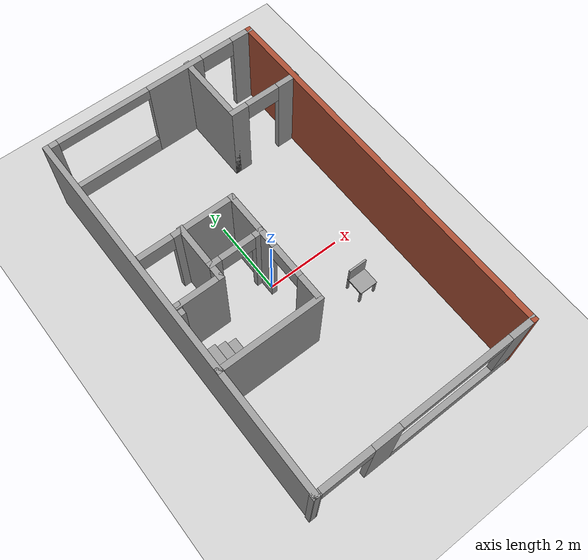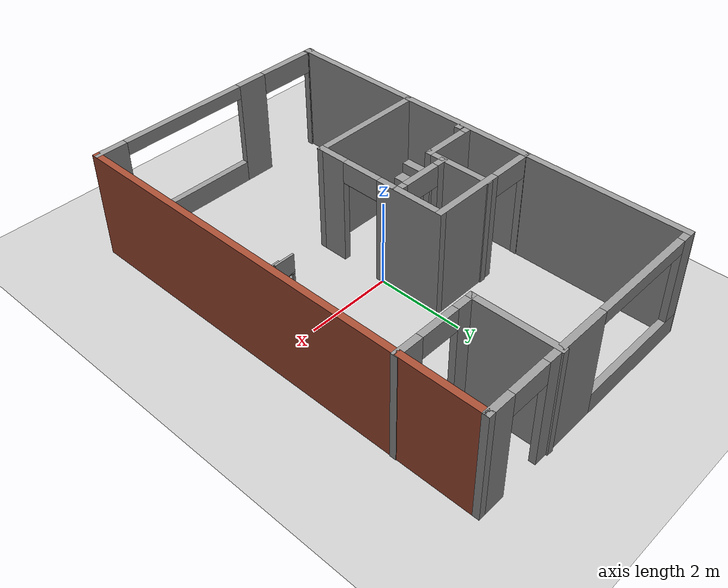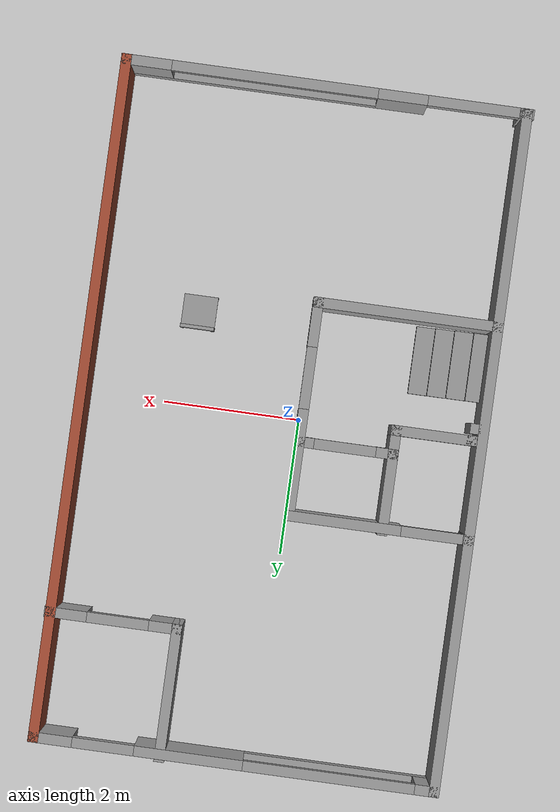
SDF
<sdf version="1.6">
 <world name="default">
  <model name="ground_plane">
   <static>1</static>
   <link name="link">
    <collision name="collision">
     <geometry><plane><normal>0 0 1</normal><size>100 100</size></plane></geometry>
     <surface><friction><ode><mu>100</mu><mu2>50</mu2></ode></friction></surface>
    </collision>
    <visual name="visual">
     <cast_shadows>0</cast_shadows>
     <geometry><plane><normal>0 0 1</normal><size>100 100</size></plane></geometry>
     <material>
      <script><uri>file://media/materials/scripts/gazebo.material</uri><name>Gazebo/Grey</name></script>
     </material>
    </visual>
   </link>
  </model>
  <model name="Livingroomlab">
   <pose>0.248675 0.131128 0 0 -0 0</pose>
   <link name="Stairs_1">
    <visual name="Stairs_1_Visual_0">
     <pose>-1.93298 -1.24451 0.125 0 0 -1.5708</pose>
     <geometry><box><size>1 0.2765 0.25</size></box></geometry>
     <material>
      <script><uri>file://media/materials/scripts/gazebo.material</uri><name>Gazebo/Grey</name></script>
      <ambient>1 1 1 1</ambient>
     </material>
     <meta><layer>0</layer></meta>
    </visual>
    <collision name="Stairs_1_Collision_0">
     <geometry><box><size>1 0.2765 0.25</size></box></geometry>
     <pose>-1.93298 -1.24451 0.125 0 0 -1.5708</pose>
    </collision>
    <visual name="Stairs_1_Visual_1">
     <pose>-2.20948 -1.24451 0.375 0 0 -1.5708</pose>
     <geometry><box><size>1 0.2765 0.25</size></box></geometry>
     <material>
      <script><uri>file://media/materials/scripts/gazebo.material</uri><name>Gazebo/Grey</name></script>
      <ambient>1 1 1 1</ambient>
     </material>
     <meta><layer>0</layer></meta>
    </visual>
    <collision name="Stairs_1_Collision_1">
     <geometry><box><size>1 0.2765 0.25</size></box></geometry>
     <pose>-2.20948 -1.24451 0.375 0 0 -1.5708</pose>
    </collision>
    <visual name="Stairs_1_Visual_2">
     <pose>-2.48598 -1.24451 0.625 0 0 -1.5708</pose>
     <geometry><box><size>1 0.2765 0.25</size></box></geometry>
     <material>
      <script><uri>file://media/materials/scripts/gazebo.material</uri><name>Gazebo/Grey</name></script>
      <ambient>1 1 1 1</ambient>
     </material>
     <meta><layer>0</layer></meta>
    </visual>
    <collision name="Stairs_1_Collision_2">
     <geometry><box><size>1 0.2765 0.25</size></box></geometry>
     <pose>-2.48598 -1.24451 0.625 0 0 -1.5708</pose>
    </collision>
    <visual name="Stairs_1_Visual_3">
     <pose>-2.76248 -1.24451 0.875 0 0 -1.5708</pose>
     <geometry><box><size>1 0.2765 0.25</size></box></geometry>
     <material>
      <script><uri>file://media/materials/scripts/gazebo.material</uri><name>Gazebo/Grey</name></script>
      <ambient>1 1 1 1</ambient>
     </material>
     <meta><layer>0</layer></meta>
    </visual>
    <collision name="Stairs_1_Collision_3">
     <geometry><box><size>1 0.2765 0.25</size></box></geometry>
     <pose>-2.76248 -1.24451 0.875 0 0 -1.5708</pose>
    </collision>
   </link>
   <link name="Wall_10">
    <collision name="Wall_10_Collision">
     <geometry><box><size>0.15 0.15 2.5</size></box></geometry>
     <pose>0 0 1.25 0 -0 0</pose>
    </collision>
    <visual name="Wall_10_Visual">
     <pose>0 0 1.25 0 -0 0</pose>
     <geometry><box><size>0.15 0.15 2.5</size></box></geometry>
     <material>
      <script><uri>file://media/materials/scripts/gazebo.material</uri><name>Gazebo/Grey</name></script>
      <ambient>1 1 1 1</ambient>
     </material>
     <meta><layer>0</layer></meta>
    </visual>
    <pose>2.91851 4.90773 0 0 -0 0</pose>
   </link>
   <link name="Wall_15">
    <pose>0.016769 4.90773 0 0 -0 3.14159</pose>
    <visual name="Wall_15_Visual_0">
     <pose>-2.65996 0 1.25 0 -0 0</pose>
     <geometry><box><size>0.633556 0.15 2.5</size></box></geometry>
     <material>
      <script><uri>file://media/materials/scripts/gazebo.material</uri><name>Gazebo/Grey</name></script>
      <ambient>1 1 1 1</ambient>
     </material>
     <meta><layer>0</layer></meta>
    </visual>
    <collision name="Wall_15_Collision_0">
     <geometry><box><size>0.633556 0.15 2.5</size></box></geometry>
     <pose>-2.65996 0 1.25 0 -0 0</pose>
    </collision>
    <visual name="Wall_15_Visual_1">
     <pose>-0.65252 0 1.25 0 -0 0</pose>
     <geometry><box><size>1.58132 0.15 2.5</size></box></geometry>
     <material>
      <script><uri>file://media/materials/scripts/gazebo.material</uri><name>Gazebo/Grey</name></script>
      <ambient>1 1 1 1</ambient>
     </material>
     <meta><layer>0</layer></meta>
    </visual>
    <collision name="Wall_15_Collision_1">
     <geometry><box><size>1.58132 0.15 2.5</size></box></geometry>
     <pose>-0.65252 0 1.25 0 -0 0</pose>
    </collision>
    <visual name="Wall_15_Visual_2">
     <pose>1.55744 0 0.25 0 -0 0</pose>
     <geometry><box><size>2.8386 0.15 0.5</size></box></geometry>
     <material>
      <script><uri>file://media/materials/scripts/gazebo.material</uri><name>Gazebo/Grey</name></script>
      <ambient>1 1 1 1</ambient>
     </material>
     <meta><layer>0</layer></meta>
    </visual>
    <collision name="Wall_15_Collision_2">
     <geometry><box><size>2.8386 0.15 0.5</size></box></geometry>
     <pose>1.55744 0 0.25 0 -0 0</pose>
    </collision>
    <visual name="Wall_15_Visual_3">
     <pose>2.80744 0 1.5 0 -0 0</pose>
     <geometry><box><size>0.338597 0.15 2</size></box></geometry>
     <material>
      <script><uri>file://media/materials/scripts/gazebo.material</uri><name>Gazebo/Grey</name></script>
      <ambient>1 1 1 1</ambient>
     </material>
     <meta><layer>0</layer></meta>
    </visual>
    <collision name="Wall_15_Collision_3">
     <geometry><box><size>0.338597 0.15 2</size></box></geometry>
     <pose>2.80744 0 1.5 0 -0 0</pose>
    </collision>
    <visual name="Wall_15_Visual_4">
     <pose>-1.89318 0 2.25 0 -0 0</pose>
     <geometry><box><size>0.9 0.15 0.5</size></box></geometry>
     <material>
      <script><uri>file://media/materials/scripts/gazebo.material</uri><name>Gazebo/Grey</name></script>
      <ambient>1 1 1 1</ambient>
     </material>
     <meta><layer>0</layer></meta>
    </visual>
    <collision name="Wall_15_Collision_4">
     <geometry><box><size>0.9 0.15 0.5</size></box></geometry>
     <pose>-1.89318 0 2.25 0 -0 0</pose>
    </collision>
    <visual name="Wall_15_Visual_5">
     <pose>1.38814 0 2.35 0 -0 0</pose>
     <geometry><box><size>2.5 0.15 0.3</size></box></geometry>
     <material>
      <script><uri>file://media/materials/scripts/gazebo.material</uri><name>Gazebo/Grey</name></script>
      <ambient>1 1 1 1</ambient>
     </material>
     <meta><layer>0</layer></meta>
    </visual>
    <collision name="Wall_15_Collision_5">
     <geometry><box><size>2.5 0.15 0.3</size></box></geometry>
     <pose>1.38814 0 2.35 0 -0 0</pose>
    </collision>
   </link>
   <link name="Wall_16">
    <collision name="Wall_16_Collision">
     <geometry><box><size>10 0.15 2.5</size></box></geometry>
     <pose>0 0 1.25 0 -0 0</pose>
    </collision>
    <visual name="Wall_16_Visual">
     <pose>0 0 1.25 0 -0 0</pose>
     <geometry><box><size>10 0.15 2.5</size></box></geometry>
     <material>
      <script><uri>file://media/materials/scripts/gazebo.material</uri><name>Gazebo/Grey</name></script>
      <ambient>1 1 1 1</ambient>
     </material>
     <meta><layer>0</layer></meta>
    </visual>
    <pose>-2.90823 -0.017274 0 0 0 -1.5708</pose>
   </link>
   <link name="Wall_17">
    <collision name="Wall_17_Collision">
     <geometry><box><size>0.15 0.15 2.5</size></box></geometry>
     <pose>0 0 1.25 0 -0 0</pose>
    </collision>
    <visual name="Wall_17_Visual">
     <pose>0 0 1.25 0 -0 0</pose>
     <geometry><box><size>0.15 0.15 2.5</size></box></geometry>
     <material>
      <script><uri>file://media/materials/scripts/gazebo.material</uri><name>Gazebo/Grey</name></script>
      <ambient>1 1 1 1</ambient>
     </material>
     <meta><layer>0</layer></meta>
    </visual>
    <pose>-2.88497 -4.94227 0 0 -0 0</pose>
   </link>
   <link name="Wall_19">
    <collision name="Wall_19_Collision">
     <geometry><box><size>2 0.15 2.5</size></box></geometry>
     <pose>0 0 1.25 0 -0 0</pose>
    </collision>
    <visual name="Wall_19_Visual">
     <pose>0 0 1.25 0 -0 0</pose>
     <geometry><box><size>2 0.15 2.5</size></box></geometry>
     <material>
      <script><uri>file://media/materials/scripts/gazebo.material</uri><name>Gazebo/Grey</name></script>
      <ambient>1 1 1 1</ambient>
     </material>
     <meta><layer>0</layer></meta>
    </visual>
    <pose>1.08149 4.01727 0 0 0 -1.5708</pose>
   </link>
   <link name="Wall_20">
    <pose>2.00649 3.09227 0 0 -0 0</pose>
    <visual name="Wall_20_Visual_0">
     <pose>-0.756805 0 1.25 0 -0 0</pose>
     <geometry><box><size>0.48639 0.15 2.5</size></box></geometry>
     <material>
      <script><uri>file://media/materials/scripts/gazebo.material</uri><name>Gazebo/Grey</name></script>
      <ambient>1 1 1 1</ambient>
     </material>
     <meta><layer>0</layer></meta>
    </visual>
    <collision name="Wall_20_Collision_0">
     <geometry><box><size>0.48639 0.15 2.5</size></box></geometry>
     <pose>-0.756805 0 1.25 0 -0 0</pose>
    </collision>
    <visual name="Wall_20_Visual_1">
     <pose>0.693195 0 1.25 0 -0 0</pose>
     <geometry><box><size>0.61361 0.15 2.5</size></box></geometry>
     <material>
      <script><uri>file://media/materials/scripts/gazebo.material</uri><name>Gazebo/Grey</name></script>
      <ambient>1 1 1 1</ambient>
     </material>
     <meta><layer>0</layer></meta>
    </visual>
    <collision name="Wall_20_Collision_1">
     <geometry><box><size>0.61361 0.15 2.5</size></box></geometry>
     <pose>0.693195 0 1.25 0 -0 0</pose>
    </collision>
    <visual name="Wall_20_Visual_2">
     <pose>-0.06361 0 2.25 0 -0 0</pose>
     <geometry><box><size>0.9 0.15 0.5</size></box></geometry>
     <material>
      <script><uri>file://media/materials/scripts/gazebo.material</uri><name>Gazebo/Grey</name></script>
      <ambient>1 1 1 1</ambient>
     </material>
     <meta><layer>0</layer></meta>
    </visual>
    <collision name="Wall_20_Collision_2">
     <geometry><box><size>0.9 0.15 0.5</size></box></geometry>
     <pose>-0.06361 0 2.25 0 -0 0</pose>
    </collision>
   </link>
   <link name="Wall_21">
    <collision name="Wall_21_Collision">
     <geometry><box><size>0.15 0.15 2.5</size></box></geometry>
     <pose>0 0 1.25 0 -0 0</pose>
    </collision>
    <visual name="Wall_21_Visual">
     <pose>0 0 1.25 0 -0 0</pose>
     <geometry><box><size>0.15 0.15 2.5</size></box></geometry>
     <material>
      <script><uri>file://media/materials/scripts/gazebo.material</uri><name>Gazebo/Grey</name></script>
      <ambient>1 1 1 1</ambient>
     </material>
     <meta><layer>0</layer></meta>
    </visual>
    <pose>2.93149 3.09227 0 0 -0 0</pose>
   </link>
   <link name="Wall_23">
    <pose>-1.59731 1.2506 0 0 -0 0</pose>
    <visual name="Wall_23_Visual_0">
     <pose>-1.29946 0 1.25 0 -0 0</pose>
     <geometry><box><size>0.151074 0.15 2.5</size></box></geometry>
     <material>
      <script><uri>file://media/materials/scripts/gazebo.material</uri><name>Gazebo/Grey</name></script>
      <ambient>1 1 1 1</ambient>
     </material>
     <meta><layer>0</layer></meta>
    </visual>
    <collision name="Wall_23_Collision_0">
     <geometry><box><size>0.151074 0.15 2.5</size></box></geometry>
     <pose>-1.29946 0 1.25 0 -0 0</pose>
    </collision>
    <visual name="Wall_23_Visual_1">
     <pose>0.525537 0 1.25 0 -0 0</pose>
     <geometry><box><size>1.69893 0.15 2.5</size></box></geometry>
     <material>
      <script><uri>file://media/materials/scripts/gazebo.material</uri><name>Gazebo/Grey</name></script>
      <ambient>1 1 1 1</ambient>
     </material>
     <meta><layer>0</layer></meta>
    </visual>
    <collision name="Wall_23_Collision_1">
     <geometry><box><size>1.69893 0.15 2.5</size></box></geometry>
     <pose>0.525537 0 1.25 0 -0 0</pose>
    </collision>
    <visual name="Wall_23_Visual_2">
     <pose>-0.773926 0 2.25 0 -0 0</pose>
     <geometry><box><size>0.9 0.15 0.5</size></box></geometry>
     <material>
      <script><uri>file://media/materials/scripts/gazebo.material</uri><name>Gazebo/Grey</name></script>
      <ambient>1 1 1 1</ambient>
     </material>
     <meta><layer>0</layer></meta>
    </visual>
    <collision name="Wall_23_Collision_2">
     <geometry><box><size>0.9 0.15 0.5</size></box></geometry>
     <pose>-0.773926 0 2.25 0 -0 0</pose>
    </collision>
   </link>
   <link name="Wall_26">
    <collision name="Wall_26_Collision">
     <geometry><box><size>0.15 0.15 2.5</size></box></geometry>
     <pose>0 0 1.25 0 -0 0</pose>
    </collision>
    <visual name="Wall_26_Visual">
     <pose>0 0 1.25 0 -0 0</pose>
     <geometry><box><size>0.15 0.15 2.5</size></box></geometry>
     <material>
      <script><uri>file://media/materials/scripts/gazebo.material</uri><name>Gazebo/Grey</name></script>
      <ambient>1 1 1 1</ambient>
     </material>
     <meta><layer>0</layer></meta>
    </visual>
    <pose>-2.78426 -0.349398 0 0 -0 0</pose>
   </link>
   <link name="Wall_28">
    <pose>-0.297309 -0.299398 0 0 0 -1.5708</pose>
    <visual name="Wall_28_Visual_0">
     <pose>-0.81151 0 1.25 0 -0 0</pose>
     <geometry><box><size>1.62698 0.15 2.5</size></box></geometry>
     <material>
      <script><uri>file://media/materials/scripts/gazebo.material</uri><name>Gazebo/Grey</name></script>
      <ambient>1 1 1 1</ambient>
     </material>
     <meta><layer>0</layer></meta>
    </visual>
    <collision name="Wall_28_Collision_0">
     <geometry><box><size>1.62698 0.15 2.5</size></box></geometry>
     <pose>-0.81151 0 1.25 0 -0 0</pose>
    </collision>
    <visual name="Wall_28_Visual_1">
     <pose>1.26349 0 1.25 0 -0 0</pose>
     <geometry><box><size>0.72302 0.15 2.5</size></box></geometry>
     <material>
      <script><uri>file://media/materials/scripts/gazebo.material</uri><name>Gazebo/Grey</name></script>
      <ambient>1 1 1 1</ambient>
     </material>
     <meta><layer>0</layer></meta>
    </visual>
    <collision name="Wall_28_Collision_1">
     <geometry><box><size>0.72302 0.15 2.5</size></box></geometry>
     <pose>1.26349 0 1.25 0 -0 0</pose>
    </collision>
    <visual name="Wall_28_Visual_2">
     <pose>0.45198 0 2.25 0 -0 0</pose>
     <geometry><box><size>0.9 0.15 0.5</size></box></geometry>
     <material>
      <script><uri>file://media/materials/scripts/gazebo.material</uri><name>Gazebo/Grey</name></script>
      <ambient>1 1 1 1</ambient>
     </material>
     <meta><layer>0</layer></meta>
    </visual>
    <collision name="Wall_28_Collision_2">
     <geometry><box><size>0.9 0.15 0.5</size></box></geometry>
     <pose>0.45198 0 2.25 0 -0 0</pose>
    </collision>
   </link>
   <link name="Wall_29">
    <collision name="Wall_29_Collision">
     <geometry><box><size>2.75 0.15 2.5</size></box></geometry>
     <pose>0 0 1.25 0 -0 0</pose>
    </collision>
    <visual name="Wall_29_Visual">
     <pose>0 0 1.25 0 -0 0</pose>
     <geometry><box><size>2.75 0.15 2.5</size></box></geometry>
     <material>
      <script><uri>file://media/materials/scripts/gazebo.material</uri><name>Gazebo/Grey</name></script>
      <ambient>1 1 1 1</ambient>
     </material>
     <meta><layer>0</layer></meta>
    </visual>
    <pose>-1.59731 -1.8494 0 0 -0 3.14159</pose>
   </link>
   <link name="Wall_30">
    <collision name="Wall_30_Collision">
     <geometry><box><size>0.15 0.15 2.5</size></box></geometry>
     <pose>0 0 1.25 0 -0 0</pose>
    </collision>
    <visual name="Wall_30_Visual">
     <pose>0 0 1.25 0 -0 0</pose>
     <geometry><box><size>0.15 0.15 2.5</size></box></geometry>
     <material>
      <script><uri>file://media/materials/scripts/gazebo.material</uri><name>Gazebo/Grey</name></script>
      <ambient>1 1 1 1</ambient>
     </material>
     <meta><layer>0</layer></meta>
    </visual>
    <pose>-2.89731 -1.8494 0 0 -0 0</pose>
   </link>
   <link name="Wall_32">
    <collision name="Wall_32_Collision">
     <geometry><box><size>1.25 0.15 2.5</size></box></geometry>
     <pose>0 0 1.25 0 -0 0</pose>
    </collision>
    <visual name="Wall_32_Visual">
     <pose>0 0 1.25 0 -0 0</pose>
     <geometry><box><size>1.25 0.15 2.5</size></box></geometry>
     <material>
      <script><uri>file://media/materials/scripts/gazebo.material</uri><name>Gazebo/Grey</name></script>
      <ambient>1 1 1 1</ambient>
     </material>
     <meta><layer>0</layer></meta>
    </visual>
    <pose>-1.65945 0.725303 0 0 0 -1.5708</pose>
   </link>
   <link name="Wall_33">
    <pose>-0.984448 0.175303 0 0 -0 0</pose>
    <visual name="Wall_33_Visual_0">
     <pose>-0.587699 0 1.25 0 -0 0</pose>
     <geometry><box><size>0.324602 0.15 2.5</size></box></geometry>
     <material>
      <script><uri>file://media/materials/scripts/gazebo.material</uri><name>Gazebo/Grey</name></script>
      <ambient>1 1 1 1</ambient>
     </material>
     <meta><layer>0</layer></meta>
    </visual>
    <collision name="Wall_33_Collision_0">
     <geometry><box><size>0.324602 0.15 2.5</size></box></geometry>
     <pose>-0.587699 0 1.25 0 -0 0</pose>
    </collision>
    <visual name="Wall_33_Visual_1">
     <pose>0.612301 0 1.25 0 -0 0</pose>
     <geometry><box><size>0.275398 0.15 2.5</size></box></geometry>
     <material>
      <script><uri>file://media/materials/scripts/gazebo.material</uri><name>Gazebo/Grey</name></script>
      <ambient>1 1 1 1</ambient>
     </material>
     <meta><layer>0</layer></meta>
    </visual>
    <collision name="Wall_33_Collision_1">
     <geometry><box><size>0.275398 0.15 2.5</size></box></geometry>
     <pose>0.612301 0 1.25 0 -0 0</pose>
    </collision>
    <visual name="Wall_33_Visual_2">
     <pose>0.024602 0 2.25 0 -0 0</pose>
     <geometry><box><size>0.9 0.15 0.5</size></box></geometry>
     <material>
      <script><uri>file://media/materials/scripts/gazebo.material</uri><name>Gazebo/Grey</name></script>
      <ambient>1 1 1 1</ambient>
     </material>
     <meta><layer>0</layer></meta>
    </visual>
    <collision name="Wall_33_Collision_2">
     <geometry><box><size>0.9 0.15 0.5</size></box></geometry>
     <pose>0.024602 0 2.25 0 -0 0</pose>
    </collision>
   </link>
   <link name="Wall_35">
    <collision name="Wall_35_Collision">
     <geometry><box><size>0.5 0.15 2.5</size></box></geometry>
     <pose>0 0 1.25 0 -0 0</pose>
    </collision>
    <visual name="Wall_35_Visual">
     <pose>0 0 1.25 0 -0 0</pose>
     <geometry><box><size>0.5 0.15 2.5</size></box></geometry>
     <material>
      <script><uri>file://media/materials/scripts/gazebo.material</uri><name>Gazebo/Grey</name></script>
      <ambient>1 1 1 1</ambient>
     </material>
     <meta><layer>0</layer></meta>
    </visual>
    <pose>-1.65945 0.000303 0 0 0 -1.5708</pose>
   </link>
   <link name="Wall_36">
    <collision name="Wall_36_Collision">
     <geometry><box><size>1.25 0.15 2.5</size></box></geometry>
     <pose>0 0 1.25 0 -0 0</pose>
    </collision>
    <visual name="Wall_36_Visual">
     <pose>0 0 1.25 0 -0 0</pose>
     <geometry><box><size>1.25 0.15 2.5</size></box></geometry>
     <material>
      <script><uri>file://media/materials/scripts/gazebo.material</uri><name>Gazebo/Grey</name></script>
      <ambient>1 1 1 1</ambient>
     </material>
     <meta><layer>0</layer></meta>
    </visual>
    <pose>-2.20945 -0.174697 0 0 -0 3.14159</pose>
   </link>
   <link name="Wall_37">
    <collision name="Wall_37_Collision">
     <geometry><box><size>0.15 0.15 2.5</size></box></geometry>
     <pose>0 0 1.25 0 -0 0</pose>
    </collision>
    <visual name="Wall_37_Visual">
     <pose>0 0 1.25 0 -0 0</pose>
     <geometry><box><size>0.15 0.15 2.5</size></box></geometry>
     <material>
      <script><uri>file://media/materials/scripts/gazebo.material</uri><name>Gazebo/Grey</name></script>
      <ambient>1 1 1 1</ambient>
     </material>
     <meta><layer>0</layer></meta>
    </visual>
    <pose>-2.75945 -0.174697 0 0 -0 0</pose>
   </link>
   <link name="Wall_4">
    <pose>-0.006493 -4.94227 0 0 -0 0</pose>
    <visual name="Wall_4_Visual_0">
     <pose>-2.8964 0 1.25 0 -0 0</pose>
     <geometry><box><size>0.207193 0.15 2.5</size></box></geometry>
     <material>
      <script><uri>file://media/materials/scripts/gazebo.material</uri><name>Gazebo/Grey</name></script>
      <ambient>1 1 1 1</ambient>
     </material>
     <meta><layer>0</layer></meta>
    </visual>
    <collision name="Wall_4_Collision_0">
     <geometry><box><size>0.207193 0.15 2.5</size></box></geometry>
     <pose>-2.8964 0 1.25 0 -0 0</pose>
    </collision>
    <visual name="Wall_4_Visual_1">
     <pose>-1.0981 0 1.25 0 -0 0</pose>
     <geometry><box><size>0.722472 0.15 2.5</size></box></geometry>
     <material>
      <script><uri>file://media/materials/scripts/gazebo.material</uri><name>Gazebo/Grey</name></script>
      <ambient>1 1 1 1</ambient>
     </material>
     <meta><layer>0</layer></meta>
    </visual>
    <collision name="Wall_4_Collision_1">
     <geometry><box><size>0.722472 0.15 2.5</size></box></geometry>
     <pose>-1.0981 0 1.25 0 -0 0</pose>
    </collision>
    <visual name="Wall_4_Visual_2">
     <pose>1.13157 0 0.25 0 -0 0</pose>
     <geometry><box><size>3.73686 0.15 0.5</size></box></geometry>
     <material>
      <script><uri>file://media/materials/scripts/gazebo.material</uri><name>Gazebo/Grey</name></script>
      <ambient>1 1 1 1</ambient>
     </material>
     <meta><layer>0</layer></meta>
    </visual>
    <collision name="Wall_4_Collision_2">
     <geometry><box><size>3.73686 0.15 0.5</size></box></geometry>
     <pose>1.13157 0 0.25 0 -0 0</pose>
    </collision>
    <visual name="Wall_4_Visual_3">
     <pose>2.63157 0 1.5 0 -0 0</pose>
     <geometry><box><size>0.736863 0.15 2</size></box></geometry>
     <material>
      <script><uri>file://media/materials/scripts/gazebo.material</uri><name>Gazebo/Grey</name></script>
      <ambient>1 1 1 1</ambient>
     </material>
     <meta><layer>0</layer></meta>
    </visual>
    <collision name="Wall_4_Collision_3">
     <geometry><box><size>0.736863 0.15 2</size></box></geometry>
     <pose>2.63157 0 1.5 0 -0 0</pose>
    </collision>
    <visual name="Wall_4_Visual_4">
     <pose>-2.12607 0 2.25 0 -0 0</pose>
     <geometry><box><size>1.33347 0.15 0.5</size></box></geometry>
     <material>
      <script><uri>file://media/materials/scripts/gazebo.material</uri><name>Gazebo/Grey</name></script>
      <ambient>1 1 1 1</ambient>
     </material>
     <meta><layer>0</layer></meta>
    </visual>
    <collision name="Wall_4_Collision_4">
     <geometry><box><size>1.33347 0.15 0.5</size></box></geometry>
     <pose>-2.12607 0 2.25 0 -0 0</pose>
    </collision>
    <visual name="Wall_4_Visual_5">
     <pose>0.763137 0 2.35 0 -0 0</pose>
     <geometry><box><size>3 0.15 0.3</size></box></geometry>
     <material>
      <script><uri>file://media/materials/scripts/gazebo.material</uri><name>Gazebo/Grey</name></script>
      <ambient>1 1 1 1</ambient>
     </material>
     <meta><layer>0</layer></meta>
    </visual>
    <collision name="Wall_4_Collision_5">
     <geometry><box><size>3 0.15 0.3</size></box></geometry>
     <pose>0.763137 0 2.35 0 -0 0</pose>
    </collision>
   </link>
   <link name="Wall_9">
    <collision name="Wall_9_Collision">
     <geometry><box><size>10 0.15 2.5</size></box></geometry>
     <pose>0 0 1.25 0 -0 0</pose>
    </collision>
    <visual name="Wall_9_Visual">
     <pose>0 0 1.25 0 -0 0</pose>
     <geometry><box><size>10 0.15 2.5</size></box></geometry>
     <material>
      <script><uri>file://media/materials/scripts/gazebo.material</uri><name>Gazebo/Bricks</name></script>
      <ambient>0.996078 0.47451 0.0196078 1</ambient>
     </material>
     <meta><layer>0</layer></meta>
    </visual>
    <pose>2.91851 -0.017274 0 0 -0 1.5708</pose>
   </link>
   <static>1</static>
  </model>
  <model name="Chair_clone_0">
   <link name="link_5">
    <pose>-0.225 0.256445 -0.120833 0 -0 0</pose>
    <inertial>
     <mass>1</mass>
     <inertia>
      <ixx>0.166667</ixx>
      <ixy>0</ixy>
      <ixz>0</ixz>
      <iyy>0.166667</iyy>
      <iyz>0</iyz>
      <izz>0.166667</izz>
     </inertia>
    </inertial>
    <visual name="visual">
     <geometry><box><size>0.05 0.05 0.45</size></box></geometry>
     <material>
      <lighting>1</lighting>
      <script><uri>file://media/materials/scripts/gazebo.material</uri><name>Gazebo/Grey</name></script>
      <ambient>0.3 0.3 0.3 1</ambient>
      <diffuse>0.7 0.7 0.7 1</diffuse>
      <specular>0.01 0.01 0.01 1</specular>
      <emissive>0 0 0 1</emissive>
      <shader type="vertex"><normal_map>__default__</normal_map></shader>
     </material>
    </visual>
    <collision name="collision">
     <geometry><box><size>0.05 0.05 0.45</size></box></geometry>
     <surface>
      <friction>
       <ode><mu>1</mu><mu2>1</mu2><fdir1>0 0 0</fdir1><slip1>0</slip1><slip2>0</slip2></ode>
       <torsional>
        <coefficient>1</coefficient>
        <patch_radius>0</patch_radius>
        <surface_radius>0</surface_radius>
        <use_patch_radius>1</use_patch_radius>
        <ode><slip>0</slip></ode>
       </torsional>
      </friction>
      <bounce><restitution_coefficient>0</restitution_coefficient><threshold>1e+06</threshold></bounce>
      <contact>
       <collide_without_contact>0</collide_without_contact>
       <collide_without_contact_bitmask>1</collide_without_contact_bitmask>
       <collide_bitmask>1</collide_bitmask>
       <ode>
        <soft_cfm>0</soft_cfm>
        <soft_erp>0.2</soft_erp>
        <kp>1e+13</kp>
        <kd>1</kd>
        <max_vel>0.01</max_vel>
        <min_depth>0</min_depth>
       </ode>
       <bullet>
        <split_impulse>1</split_impulse>
        <split_impulse_penetration_threshold>-0.01</split_impulse_penetration_threshold>
        <soft_cfm>0</soft_cfm>
        <soft_erp>0.2</soft_erp>
        <kp>1e+13</kp>
        <kd>1</kd>
       </bullet>
      </contact>
     </surface>
    </collision>
   </link>
   <link name="link_5_clone">
    <pose>0.225 0.263711 -0.120833 0 -0 0</pose>
    <inertial>
     <mass>1</mass>
     <inertia>
      <ixx>0.166667</ixx>
      <ixy>0</ixy>
      <ixz>0</ixz>
      <iyy>0.166667</iyy>
      <iyz>0</iyz>
      <izz>0.166667</izz>
     </inertia>
    </inertial>
    <visual name="visual">
     <geometry><box><size>0.05 0.05 0.45</size></box></geometry>
     <material>
      <lighting>1</lighting>
      <script><uri>file://media/materials/scripts/gazebo.material</uri><name>Gazebo/Grey</name></script>
      <ambient>0.3 0.3 0.3 1</ambient>
      <diffuse>0.7 0.7 0.7 1</diffuse>
      <specular>0.01 0.01 0.01 1</specular>
      <emissive>0 0 0 1</emissive>
      <shader type="vertex"><normal_map>__default__</normal_map></shader>
     </material>
    </visual>
    <collision name="collision">
     <geometry><box><size>0.05 0.05 0.45</size></box></geometry>
     <surface>
      <friction>
       <ode><mu>1</mu><mu2>1</mu2><fdir1>0 0 0</fdir1><slip1>0</slip1><slip2>0</slip2></ode>
       <torsional>
        <coefficient>1</coefficient>
        <patch_radius>0</patch_radius>
        <surface_radius>0</surface_radius>
        <use_patch_radius>1</use_patch_radius>
        <ode><slip>0</slip></ode>
       </torsional>
      </friction>
      <bounce><restitution_coefficient>0</restitution_coefficient><threshold>1e+06</threshold></bounce>
      <contact>
       <collide_without_contact>0</collide_without_contact>
       <collide_without_contact_bitmask>1</collide_without_contact_bitmask>
       <collide_bitmask>1</collide_bitmask>
       <ode>
        <soft_cfm>0</soft_cfm>
        <soft_erp>0.2</soft_erp>
        <kp>1e+13</kp>
        <kd>1</kd>
        <max_vel>0.01</max_vel>
        <min_depth>0</min_depth>
       </ode>
       <bullet>
        <split_impulse>1</split_impulse>
        <split_impulse_penetration_threshold>-0.01</split_impulse_penetration_threshold>
        <soft_cfm>0</soft_cfm>
        <soft_erp>0.2</soft_erp>
        <kp>1e+13</kp>
        <kd>1</kd>
       </bullet>
      </contact>
     </surface>
    </collision>
   </link>
   <link name="link_5_clone_0">
    <pose>0.225 -0.186289 -0.120833 0 -0 0</pose>
    <inertial>
     <mass>1</mass>
     <inertia>
      <ixx>0.166667</ixx>
      <ixy>0</ixy>
      <ixz>0</ixz>
      <iyy>0.166667</iyy>
      <iyz>0</iyz>
      <izz>0.166667</izz>
     </inertia>
    </inertial>
    <visual name="visual">
     <geometry><box><size>0.05 0.05 0.45</size></box></geometry>
     <material>
      <lighting>1</lighting>
      <script><uri>file://media/materials/scripts/gazebo.material</uri><name>Gazebo/Grey</name></script>
      <ambient>0.3 0.3 0.3 1</ambient>
      <diffuse>0.7 0.7 0.7 1</diffuse>
      <specular>0.01 0.01 0.01 1</specular>
      <emissive>0 0 0 1</emissive>
      <shader type="vertex"><normal_map>__default__</normal_map></shader>
     </material>
    </visual>
    <collision name="collision">
     <geometry><box><size>0.05 0.05 0.45</size></box></geometry>
     <surface>
      <friction>
       <ode><mu>1</mu><mu2>1</mu2><fdir1>0 0 0</fdir1><slip1>0</slip1><slip2>0</slip2></ode>
       <torsional>
        <coefficient>1</coefficient>
        <patch_radius>0</patch_radius>
        <surface_radius>0</surface_radius>
        <use_patch_radius>1</use_patch_radius>
        <ode><slip>0</slip></ode>
       </torsional>
      </friction>
      <bounce><restitution_coefficient>0</restitution_coefficient><threshold>1e+06</threshold></bounce>
      <contact>
       <collide_without_contact>0</collide_without_contact>
       <collide_without_contact_bitmask>1</collide_without_contact_bitmask>
       <collide_bitmask>1</collide_bitmask>
       <ode>
        <soft_cfm>0</soft_cfm>
        <soft_erp>0.2</soft_erp>
        <kp>1e+13</kp>
        <kd>1</kd>
        <max_vel>0.01</max_vel>
        <min_depth>0</min_depth>
       </ode>
       <bullet>
        <split_impulse>1</split_impulse>
        <split_impulse_penetration_threshold>-0.01</split_impulse_penetration_threshold>
        <soft_cfm>0</soft_cfm>
        <soft_erp>0.2</soft_erp>
        <kp>1e+13</kp>
        <kd>1</kd>
       </bullet>
      </contact>
     </surface>
    </collision>
   </link>
   <link name="link_5_clone_1">
    <pose>-0.225 -0.186289 -0.120833 0 -0 0</pose>
    <inertial>
     <mass>1</mass>
     <inertia>
      <ixx>0.166667</ixx>
      <ixy>0</ixy>
      <ixz>0</ixz>
      <iyy>0.166667</iyy>
      <iyz>0</iyz>
      <izz>0.166667</izz>
     </inertia>
    </inertial>
    <visual name="visual">
     <geometry><box><size>0.05 0.05 0.45</size></box></geometry>
     <material>
      <lighting>1</lighting>
      <script><uri>file://media/materials/scripts/gazebo.material</uri><name>Gazebo/Grey</name></script>
      <ambient>0.3 0.3 0.3 1</ambient>
      <diffuse>0.7 0.7 0.7 1</diffuse>
      <specular>0.01 0.01 0.01 1</specular>
      <emissive>0 0 0 1</emissive>
      <shader type="vertex"><normal_map>__default__</normal_map></shader>
     </material>
    </visual>
    <collision name="collision">
     <geometry><box><size>0.05 0.05 0.45</size></box></geometry>
     <surface>
      <friction>
       <ode><mu>1</mu><mu2>1</mu2><fdir1>0 0 0</fdir1><slip1>0</slip1><slip2>0</slip2></ode>
       <torsional>
        <coefficient>1</coefficient>
        <patch_radius>0</patch_radius>
        <surface_radius>0</surface_radius>
        <use_patch_radius>1</use_patch_radius>
        <ode><slip>0</slip></ode>
       </torsional>
      </friction>
      <bounce><restitution_coefficient>0</restitution_coefficient><threshold>1e+06</threshold></bounce>
      <contact>
       <collide_without_contact>0</collide_without_contact>
       <collide_without_contact_bitmask>1</collide_without_contact_bitmask>
       <collide_bitmask>1</collide_bitmask>
       <ode>
        <soft_cfm>0</soft_cfm>
        <soft_erp>0.2</soft_erp>
        <kp>1e+13</kp>
        <kd>1</kd>
        <max_vel>0.01</max_vel>
        <min_depth>0</min_depth>
       </ode>
       <bullet>
        <split_impulse>1</split_impulse>
        <split_impulse_penetration_threshold>-0.01</split_impulse_penetration_threshold>
        <soft_cfm>0</soft_cfm>
        <soft_erp>0.2</soft_erp>
        <kp>1e+13</kp>
        <kd>1</kd>
       </bullet>
      </contact>
     </surface>
    </collision>
   </link>
   <link name="link_7">
    <pose>-0 -0.186289 0.354167 0 -0 0</pose>
    <inertial>
     <mass>1</mass>
     <inertia>
      <ixx>0.166667</ixx>
      <ixy>0</ixy>
      <ixz>0</ixz>
      <iyy>0.166667</iyy>
      <iyz>0</iyz>
      <izz>0.166667</izz>
     </inertia>
    </inertial>
    <visual name="visual">
     <geometry><box><size>0.5 0.05 0.5</size></box></geometry>
     <material>
      <lighting>1</lighting>
      <script><uri>file://media/materials/scripts/gazebo.material</uri><name>Gazebo/Grey</name></script>
      <ambient>0.3 0.3 0.3 1</ambient>
      <diffuse>0.7 0.7 0.7 1</diffuse>
      <specular>0.01 0.01 0.01 1</specular>
      <emissive>0 0 0 1</emissive>
      <shader type="vertex"><normal_map>__default__</normal_map></shader>
     </material>
    </visual>
    <collision name="collision">
     <geometry><box><size>0.5 0.05 0.5</size></box></geometry>
     <surface>
      <friction>
       <ode><mu>1</mu><mu2>1</mu2><fdir1>0 0 0</fdir1><slip1>0</slip1><slip2>0</slip2></ode>
       <torsional>
        <coefficient>1</coefficient>
        <patch_radius>0</patch_radius>
        <surface_radius>0</surface_radius>
        <use_patch_radius>1</use_patch_radius>
        <ode><slip>0</slip></ode>
       </torsional>
      </friction>
      <bounce><restitution_coefficient>0</restitution_coefficient><threshold>1e+06</threshold></bounce>
      <contact>
       <collide_without_contact>0</collide_without_contact>
       <collide_without_contact_bitmask>1</collide_without_contact_bitmask>
       <collide_bitmask>1</collide_bitmask>
       <ode>
        <soft_cfm>0</soft_cfm>
        <soft_erp>0.2</soft_erp>
        <kp>1e+13</kp>
        <kd>1</kd>
        <max_vel>0.01</max_vel>
        <min_depth>0</min_depth>
       </ode>
       <bullet>
        <split_impulse>1</split_impulse>
        <split_impulse_penetration_threshold>-0.01</split_impulse_penetration_threshold>
        <soft_cfm>0</soft_cfm>
        <soft_erp>0.2</soft_erp>
        <kp>1e+13</kp>
        <kd>1</kd>
       </bullet>
      </contact>
     </surface>
    </collision>
   </link>
   <link name="link_8">
    <pose>-0 0.038711 0.129167 0 -0 0</pose>
    <inertial>
     <mass>1</mass>
     <inertia>
      <ixx>0.166667</ixx>
      <ixy>0</ixy>
      <ixz>0</ixz>
      <iyy>0.166667</iyy>
      <iyz>0</iyz>
      <izz>0.166667</izz>
     </inertia>
    </inertial>
    <visual name="visual">
     <geometry><box><size>0.5 0.5 0.05</size></box></geometry>
     <material>
      <lighting>1</lighting>
      <script><uri>file://media/materials/scripts/gazebo.material</uri><name>Gazebo/Grey</name></script>
      <ambient>0.3 0.3 0.3 1</ambient>
      <diffuse>0.7 0.7 0.7 1</diffuse>
      <specular>0.01 0.01 0.01 1</specular>
      <emissive>0 0 0 1</emissive>
      <shader type="vertex"><normal_map>__default__</normal_map></shader>
     </material>
    </visual>
    <collision name="collision">
     <geometry><box><size>0.5 0.5 0.05</size></box></geometry>
     <surface>
      <friction>
       <ode><mu>1</mu><mu2>1</mu2><fdir1>0 0 0</fdir1><slip1>0</slip1><slip2>0</slip2></ode>
       <torsional>
        <coefficient>1</coefficient>
        <patch_radius>0</patch_radius>
        <surface_radius>0</surface_radius>
        <use_patch_radius>1</use_patch_radius>
        <ode><slip>0</slip></ode>
       </torsional>
      </friction>
      <bounce><restitution_coefficient>0</restitution_coefficient><threshold>1e+06</threshold></bounce>
      <contact>
       <collide_without_contact>0</collide_without_contact>
       <collide_without_contact_bitmask>1</collide_without_contact_bitmask>
       <collide_bitmask>1</collide_bitmask>
       <ode>
        <soft_cfm>0</soft_cfm>
        <soft_erp>0.2</soft_erp>
        <kp>1e+13</kp>
        <kd>1</kd>
        <max_vel>0.01</max_vel>
        <min_depth>0</min_depth>
       </ode>
       <bullet>
        <split_impulse>1</split_impulse>
        <split_impulse_penetration_threshold>-0.01</split_impulse_penetration_threshold>
        <soft_cfm>0</soft_cfm>
        <soft_erp>0.2</soft_erp>
        <kp>1e+13</kp>
        <kd>1</kd>
       </bullet>
      </contact>
     </surface>
    </collision>
   </link>
   <joint name="link_8_JOINT_15" type="fixed">
    <parent>link_8</parent>
    <child>link_5_clone</child>
    <physics>
     <ode><limit><cfm>0</cfm><erp>0.2</erp></limit><suspension><cfm>0</cfm><erp>0.2</erp></suspension></ode>
    </physics>
   </joint>
   <joint name="link_8_JOINT_16" type="fixed">
    <parent>link_8</parent>
    <child>link_5</child>
    <physics>
     <ode><limit><cfm>0</cfm><erp>0.2</erp></limit><suspension><cfm>0</cfm><erp>0.2</erp></suspension></ode>
    </physics>
   </joint>
   <joint name="link_8_JOINT_17" type="fixed">
    <parent>link_8</parent>
    <child>link_5</child>
    <physics>
     <ode><limit><cfm>0</cfm><erp>0.2</erp></limit><suspension><cfm>0</cfm><erp>0.2</erp></suspension></ode>
    </physics>
   </joint>
   <joint name="link_8_JOINT_18" type="fixed">
    <parent>link_8</parent>
    <child>link_5_clone_0</child>
    <physics>
     <ode><limit><cfm>0</cfm><erp>0.2</erp></limit><suspension><cfm>0</cfm><erp>0.2</erp></suspension></ode>
    </physics>
   </joint>
   <joint name="link_8_JOINT_19" type="fixed">
    <parent>link_8</parent>
    <child>link_5_clone_1</child>
    <physics>
     <ode><limit><cfm>0</cfm><erp>0.2</erp></limit><suspension><cfm>0</cfm><erp>0.2</erp></suspension></ode>
    </physics>
   </joint>
   <joint name="link_8_JOINT_20" type="fixed">
    <parent>link_8</parent>
    <child>link_7</child>
    <physics>
     <ode><limit><cfm>0</cfm><erp>0.2</erp></limit><suspension><cfm>0</cfm><erp>0.2</erp></suspension></ode>
    </physics>
   </joint>
   <static>0</static>
   <pose>1.66104 -1.33511 0.353802 0 0 -3.14109</pose>
  </model>
 </world>
</sdf>
